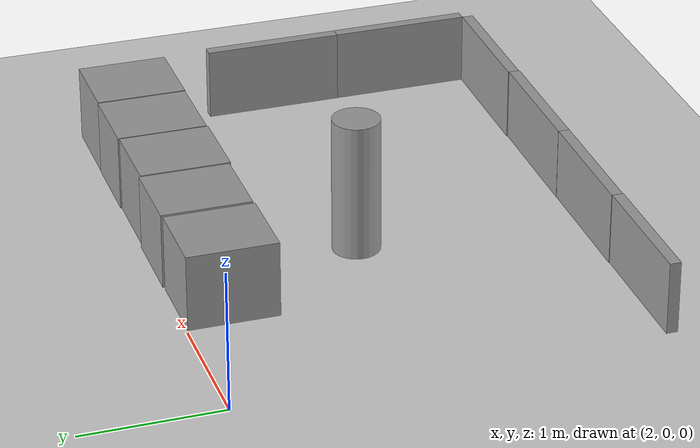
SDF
<sdf version="1.6">
 <world name="default">
  <model name="ground_plane">
   <static>1</static>
   <link name="link">
    <collision name="collision">
     <geometry><plane><normal>0 0 1</normal><size>100 100</size></plane></geometry>
     <surface>
      <contact><collide_bitmask>65535</collide_bitmask></contact>
      <friction><ode><mu>100</mu><mu2>50</mu2></ode></friction>
     </surface>
    </collision>
    <visual name="visual">
     <cast_shadows>0</cast_shadows>
     <geometry><plane><normal>0 0 1</normal><size>100 100</size></plane></geometry>
     <material>
      <script><uri>file://media/materials/scripts/gazebo.material</uri><name>Gazebo/Grey</name></script>
     </material>
    </visual>
   </link>
  </model>
  <model name="panel_9">
   <link name="link">
    <inertial>
     <mass>0.0428479</mass>
     <inertia>
      <ixx>0.00456249</ixx>
      <ixy>0</ixy>
      <ixz>0</ixz>
      <iyy>0.00101543</iyy>
      <iyz>0</iyz>
      <izz>0.00359426</izz>
     </inertia>
    </inertial>
    <pose>-0.996065 -0.479892 0.260289 0 -0 0</pose>
    <visual name="visual">
     <geometry><box><size>0.081299 1 0.527041</size></box></geometry>
     <material>
      <script><name>Gazebo/Grey</name><uri>file://media/materials/scripts/gazebo.material</uri></script>
      <emissive>0 0 0 1</emissive>
      <shader type="vertex"><normal_map>__default__</normal_map></shader>
      <ambient>0.3 0.3 0.3 1</ambient>
      <diffuse>0.7 0.7 0.7 1</diffuse>
      <specular>0.01 0.01 0.01 1</specular>
     </material>
    </visual>
    <collision name="collision">
     <geometry><box><size>0.081299 1 0.527041</size></box></geometry>
     <surface>
      <friction>
       <ode><mu>1</mu><mu2>1</mu2><fdir1>0 0 0</fdir1><slip1>0</slip1><slip2>0</slip2></ode>
       <torsional>
        <coefficient>1</coefficient>
        <patch_radius>0</patch_radius>
        <surface_radius>0</surface_radius>
        <use_patch_radius>1</use_patch_radius>
        <ode><slip>0</slip></ode>
       </torsional>
      </friction>
      <bounce><restitution_coefficient>0</restitution_coefficient><threshold>1e+06</threshold></bounce>
      <contact>
       <collide_without_contact>0</collide_without_contact>
       <collide_without_contact_bitmask>1</collide_without_contact_bitmask>
       <collide_bitmask>1</collide_bitmask>
       <ode>
        <soft_cfm>0</soft_cfm>
        <soft_erp>0.2</soft_erp>
        <kp>1e+13</kp>
        <kd>1</kd>
        <max_vel>0.01</max_vel>
        <min_depth>0</min_depth>
       </ode>
       <bullet>
        <split_impulse>1</split_impulse>
        <split_impulse_penetration_threshold>-0.01</split_impulse_penetration_threshold>
        <soft_cfm>0</soft_cfm>
        <soft_erp>0.2</soft_erp>
        <kp>1e+13</kp>
        <kd>1</kd>
       </bullet>
      </contact>
     </surface>
    </collision>
   </link>
   <static>0</static>
   <allow_auto_disable>0</allow_auto_disable>
   <pose>7.03497 -1.01885 0.00323 -1e-06 0 0.002619</pose>
  </model>
  <model name="panel_10">
   <link name="link">
    <inertial>
     <mass>0.0428479</mass>
     <inertia>
      <ixx>0.00456249</ixx>
      <ixy>0</ixy>
      <ixz>0</ixz>
      <iyy>0.00101543</iyy>
      <iyz>0</iyz>
      <izz>0.00359426</izz>
     </inertia>
    </inertial>
    <pose>-0.996065 -0.479892 0.260289 0 -0 0</pose>
    <visual name="visual">
     <geometry><box><size>0.081299 1 0.527041</size></box></geometry>
     <material>
      <script><name>Gazebo/Grey</name><uri>file://media/materials/scripts/gazebo.material</uri></script>
      <emissive>0 0 0 1</emissive>
      <shader type="vertex"><normal_map>__default__</normal_map></shader>
      <ambient>0.3 0.3 0.3 1</ambient>
      <diffuse>0.7 0.7 0.7 1</diffuse>
      <specular>0.01 0.01 0.01 1</specular>
     </material>
    </visual>
    <collision name="collision">
     <geometry><box><size>0.081299 1 0.527041</size></box></geometry>
     <surface>
      <friction>
       <ode><mu>1</mu><mu2>1</mu2><fdir1>0 0 0</fdir1><slip1>0</slip1><slip2>0</slip2></ode>
       <torsional>
        <coefficient>1</coefficient>
        <patch_radius>0</patch_radius>
        <surface_radius>0</surface_radius>
        <use_patch_radius>1</use_patch_radius>
        <ode><slip>0</slip></ode>
       </torsional>
      </friction>
      <bounce><restitution_coefficient>0</restitution_coefficient><threshold>1e+06</threshold></bounce>
      <contact>
       <collide_without_contact>0</collide_without_contact>
       <collide_without_contact_bitmask>1</collide_without_contact_bitmask>
       <collide_bitmask>1</collide_bitmask>
       <ode>
        <soft_cfm>0</soft_cfm>
        <soft_erp>0.2</soft_erp>
        <kp>1e+13</kp>
        <kd>1</kd>
        <max_vel>0.01</max_vel>
        <min_depth>0</min_depth>
       </ode>
       <bullet>
        <split_impulse>1</split_impulse>
        <split_impulse_penetration_threshold>-0.01</split_impulse_penetration_threshold>
        <soft_cfm>0</soft_cfm>
        <soft_erp>0.2</soft_erp>
        <kp>1e+13</kp>
        <kd>1</kd>
       </bullet>
      </contact>
     </surface>
    </collision>
   </link>
   <static>0</static>
   <allow_auto_disable>0</allow_auto_disable>
   <pose>7.03911 -2.01685 0.00323 -1e-06 -0 0.004812</pose>
  </model>
  <model name="panel_14_clone_1_clone">
   <link name="link">
    <inertial>
     <mass>0.0428479</mass>
     <inertia>
      <ixx>0.00456249</ixx>
      <ixy>0</ixy>
      <ixz>0</ixz>
      <iyy>0.00101543</iyy>
      <iyz>0</iyz>
      <izz>0.00359426</izz>
     </inertia>
    </inertial>
    <pose>-0.996065 -0.479892 0.260289 0 -0 0</pose>
    <visual name="visual">
     <geometry><box><size>0.081299 1 0.527041</size></box></geometry>
     <material>
      <script><name>Gazebo/Grey</name><uri>file://media/materials/scripts/gazebo.material</uri></script>
      <emissive>0 0 0 1</emissive>
      <shader type="vertex"><normal_map>__default__</normal_map></shader>
      <ambient>0.3 0.3 0.3 1</ambient>
      <diffuse>0.7 0.7 0.7 1</diffuse>
      <specular>0.01 0.01 0.01 1</specular>
     </material>
    </visual>
    <collision name="collision">
     <geometry><box><size>0.081299 1 0.527041</size></box></geometry>
     <surface>
      <friction>
       <ode><mu>1</mu><mu2>1</mu2><fdir1>0 0 0</fdir1><slip1>0</slip1><slip2>0</slip2></ode>
       <torsional>
        <coefficient>1</coefficient>
        <patch_radius>0</patch_radius>
        <surface_radius>0</surface_radius>
        <use_patch_radius>1</use_patch_radius>
        <ode><slip>0</slip></ode>
       </torsional>
      </friction>
      <bounce><restitution_coefficient>0</restitution_coefficient><threshold>1e+06</threshold></bounce>
      <contact>
       <collide_without_contact>0</collide_without_contact>
       <collide_without_contact_bitmask>1</collide_without_contact_bitmask>
       <collide_bitmask>1</collide_bitmask>
       <ode>
        <soft_cfm>0</soft_cfm>
        <soft_erp>0.2</soft_erp>
        <kp>1e+13</kp>
        <kd>1</kd>
        <max_vel>0.01</max_vel>
        <min_depth>0</min_depth>
       </ode>
       <bullet>
        <split_impulse>1</split_impulse>
        <split_impulse_penetration_threshold>-0.01</split_impulse_penetration_threshold>
        <soft_cfm>0</soft_cfm>
        <soft_erp>0.2</soft_erp>
        <kp>1e+13</kp>
        <kd>1</kd>
       </bullet>
      </contact>
     </surface>
    </collision>
   </link>
   <static>0</static>
   <allow_auto_disable>0</allow_auto_disable>
   <pose>5.98558 -4.03892 0.003223 -9e-06 0 -1.57313</pose>
  </model>
  <model name="panel_14_clone_1_clone_clone">
   <link name="link">
    <inertial>
     <mass>0.0428479</mass>
     <inertia>
      <ixx>0.00456249</ixx>
      <ixy>0</ixy>
      <ixz>0</ixz>
      <iyy>0.00101543</iyy>
      <iyz>0</iyz>
      <izz>0.00359426</izz>
     </inertia>
    </inertial>
    <pose>-0.996065 -0.479892 0.260289 0 -0 0</pose>
    <visual name="visual">
     <geometry><box><size>0.081299 1 0.527041</size></box></geometry>
     <material>
      <script><name>Gazebo/Grey</name><uri>file://media/materials/scripts/gazebo.material</uri></script>
      <emissive>0 0 0 1</emissive>
      <shader type="vertex"><normal_map>__default__</normal_map></shader>
      <ambient>0.3 0.3 0.3 1</ambient>
      <diffuse>0.7 0.7 0.7 1</diffuse>
      <specular>0.01 0.01 0.01 1</specular>
     </material>
    </visual>
    <collision name="collision">
     <geometry><box><size>0.081299 1 0.527041</size></box></geometry>
     <surface>
      <friction>
       <ode><mu>1</mu><mu2>1</mu2><fdir1>0 0 0</fdir1><slip1>0</slip1><slip2>0</slip2></ode>
       <torsional>
        <coefficient>1</coefficient>
        <patch_radius>0</patch_radius>
        <surface_radius>0</surface_radius>
        <use_patch_radius>1</use_patch_radius>
        <ode><slip>0</slip></ode>
       </torsional>
      </friction>
      <bounce><restitution_coefficient>0</restitution_coefficient><threshold>1e+06</threshold></bounce>
      <contact>
       <collide_without_contact>0</collide_without_contact>
       <collide_without_contact_bitmask>1</collide_without_contact_bitmask>
       <collide_bitmask>1</collide_bitmask>
       <ode>
        <soft_cfm>0</soft_cfm>
        <soft_erp>0.2</soft_erp>
        <kp>1e+13</kp>
        <kd>1</kd>
        <max_vel>0.01</max_vel>
        <min_depth>0</min_depth>
       </ode>
       <bullet>
        <split_impulse>1</split_impulse>
        <split_impulse_penetration_threshold>-0.01</split_impulse_penetration_threshold>
        <soft_cfm>0</soft_cfm>
        <soft_erp>0.2</soft_erp>
        <kp>1e+13</kp>
        <kd>1</kd>
       </bullet>
      </contact>
     </surface>
    </collision>
   </link>
   <static>0</static>
   <allow_auto_disable>0</allow_auto_disable>
   <pose>4.98482 -4.04279 0.003232 1e-06 -0 -1.57377</pose>
  </model>
  <model name="panel_14_clone_1_clone_clone_0">
   <link name="link">
    <inertial>
     <mass>0.0428479</mass>
     <inertia>
      <ixx>0.00456249</ixx>
      <ixy>0</ixy>
      <ixz>0</ixz>
      <iyy>0.00101543</iyy>
      <iyz>0</iyz>
      <izz>0.00359426</izz>
     </inertia>
    </inertial>
    <pose>-0.996065 -0.479892 0.260289 0 -0 0</pose>
    <visual name="visual">
     <geometry><box><size>0.081299 1 0.527041</size></box></geometry>
     <material>
      <script><name>Gazebo/Grey</name><uri>file://media/materials/scripts/gazebo.material</uri></script>
      <emissive>0 0 0 1</emissive>
      <shader type="vertex"><normal_map>__default__</normal_map></shader>
      <ambient>0.3 0.3 0.3 1</ambient>
      <diffuse>0.7 0.7 0.7 1</diffuse>
      <specular>0.01 0.01 0.01 1</specular>
     </material>
    </visual>
    <collision name="collision">
     <geometry><box><size>0.081299 1 0.527041</size></box></geometry>
     <surface>
      <friction>
       <ode><mu>1</mu><mu2>1</mu2><fdir1>0 0 0</fdir1><slip1>0</slip1><slip2>0</slip2></ode>
       <torsional>
        <coefficient>1</coefficient>
        <patch_radius>0</patch_radius>
        <surface_radius>0</surface_radius>
        <use_patch_radius>1</use_patch_radius>
        <ode><slip>0</slip></ode>
       </torsional>
      </friction>
      <bounce><restitution_coefficient>0</restitution_coefficient><threshold>1e+06</threshold></bounce>
      <contact>
       <collide_without_contact>0</collide_without_contact>
       <collide_without_contact_bitmask>1</collide_without_contact_bitmask>
       <collide_bitmask>1</collide_bitmask>
       <ode>
        <soft_cfm>0</soft_cfm>
        <soft_erp>0.2</soft_erp>
        <kp>1e+13</kp>
        <kd>1</kd>
        <max_vel>0.01</max_vel>
        <min_depth>0</min_depth>
       </ode>
       <bullet>
        <split_impulse>1</split_impulse>
        <split_impulse_penetration_threshold>-0.01</split_impulse_penetration_threshold>
        <soft_cfm>0</soft_cfm>
        <soft_erp>0.2</soft_erp>
        <kp>1e+13</kp>
        <kd>1</kd>
       </bullet>
      </contact>
     </surface>
    </collision>
   </link>
   <static>0</static>
   <allow_auto_disable>0</allow_auto_disable>
   <pose>3.98458 -4.04089 0.003225 -6e-06 -0 -1.574</pose>
  </model>
  <model name="panel_14_clone_1_clone_clone_1">
   <link name="link">
    <inertial>
     <mass>0.0428479</mass>
     <inertia>
      <ixx>0.00456249</ixx>
      <ixy>0</ixy>
      <ixz>0</ixz>
      <iyy>0.00101543</iyy>
      <iyz>0</iyz>
      <izz>0.00359426</izz>
     </inertia>
    </inertial>
    <pose>-0.996065 -0.479892 0.260289 0 -0 0</pose>
    <visual name="visual">
     <geometry><box><size>0.081299 1 0.527041</size></box></geometry>
     <material>
      <script><name>Gazebo/Grey</name><uri>file://media/materials/scripts/gazebo.material</uri></script>
      <emissive>0 0 0 1</emissive>
      <shader type="vertex"><normal_map>__default__</normal_map></shader>
      <ambient>0.3 0.3 0.3 1</ambient>
      <diffuse>0.7 0.7 0.7 1</diffuse>
      <specular>0.01 0.01 0.01 1</specular>
     </material>
    </visual>
    <collision name="collision">
     <geometry><box><size>0.081299 1 0.527041</size></box></geometry>
     <surface>
      <friction>
       <ode><mu>1</mu><mu2>1</mu2><fdir1>0 0 0</fdir1><slip1>0</slip1><slip2>0</slip2></ode>
       <torsional>
        <coefficient>1</coefficient>
        <patch_radius>0</patch_radius>
        <surface_radius>0</surface_radius>
        <use_patch_radius>1</use_patch_radius>
        <ode><slip>0</slip></ode>
       </torsional>
      </friction>
      <bounce><restitution_coefficient>0</restitution_coefficient><threshold>1e+06</threshold></bounce>
      <contact>
       <collide_without_contact>0</collide_without_contact>
       <collide_without_contact_bitmask>1</collide_without_contact_bitmask>
       <collide_bitmask>1</collide_bitmask>
       <ode>
        <soft_cfm>0</soft_cfm>
        <soft_erp>0.2</soft_erp>
        <kp>1e+13</kp>
        <kd>1</kd>
        <max_vel>0.01</max_vel>
        <min_depth>0</min_depth>
       </ode>
       <bullet>
        <split_impulse>1</split_impulse>
        <split_impulse_penetration_threshold>-0.01</split_impulse_penetration_threshold>
        <soft_cfm>0</soft_cfm>
        <soft_erp>0.2</soft_erp>
        <kp>1e+13</kp>
        <kd>1</kd>
       </bullet>
      </contact>
     </surface>
    </collision>
   </link>
   <static>0</static>
   <allow_auto_disable>0</allow_auto_disable>
   <pose>2.98661 -4.04181 0.003231 4e-06 -0 -1.57165</pose>
  </model>
  <model name="unit_cylinder_smaller">
   <link name="link">
    <inertial>
     <mass>0.116698</mass>
     <inertia>
      <ixx>0.010576</ixx>
      <ixy>0</ixy>
      <ixz>0</ixz>
      <iyy>0.010576</iyy>
      <iyz>0</iyz>
      <izz>0.00170223</izz>
     </inertia>
    </inertial>
    <visual name="visual">
     <geometry><cylinder><radius>0.170802</radius><length>1</length></cylinder></geometry>
     <material>
      <script><name>Gazebo/Grey</name><uri>file://media/materials/scripts/gazebo.material</uri></script>
     </material>
    </visual>
    <collision name="collision">
     <geometry><cylinder><radius>0.170802</radius><length>1</length></cylinder></geometry>
     <surface>
      <friction>
       <ode><mu>1</mu><mu2>1</mu2><fdir1>0 0 0</fdir1><slip1>0</slip1><slip2>0</slip2></ode>
       <torsional>
        <coefficient>1</coefficient>
        <patch_radius>0</patch_radius>
        <surface_radius>0</surface_radius>
        <use_patch_radius>1</use_patch_radius>
        <ode><slip>0</slip></ode>
       </torsional>
      </friction>
      <bounce><restitution_coefficient>0</restitution_coefficient><threshold>1e+06</threshold></bounce>
      <contact>
       <collide_without_contact>0</collide_without_contact>
       <collide_without_contact_bitmask>1</collide_without_contact_bitmask>
       <collide_bitmask>1</collide_bitmask>
       <ode>
        <soft_cfm>0</soft_cfm>
        <soft_erp>0.2</soft_erp>
        <kp>1e+13</kp>
        <kd>1</kd>
        <max_vel>0.01</max_vel>
        <min_depth>0</min_depth>
       </ode>
       <bullet>
        <split_impulse>1</split_impulse>
        <split_impulse_penetration_threshold>-0.01</split_impulse_penetration_threshold>
        <soft_cfm>0</soft_cfm>
        <soft_erp>0.2</soft_erp>
        <kp>1e+13</kp>
        <kd>1</kd>
       </bullet>
      </contact>
     </surface>
    </collision>
   </link>
   <static>0</static>
   <pose>3.75497 -1.4197 0.5 0 -0 0</pose>
  </model>
  <model name="box_level5">
   <link name="link">
    <inertial>
     <mass>0.207385</mass>
     <inertia>
      <ixx>0.0125184</ixx>
      <ixy>0</ixy>
      <ixz>0</ixz>
      <iyy>0.0111102</iyy>
      <iyz>0</iyz>
      <izz>0.0130087</izz>
     </inertia>
    </inertial>
    <visual name="visual">
     <geometry><box><size>0.579331 0.645836 0.554302</size></box></geometry>
     <material>
      <script><name>Gazebo/Grey</name><uri>file://media/materials/scripts/gazebo.material</uri></script>
     </material>
    </visual>
    <collision name="collision">
     <geometry><box><size>0.579331 0.645836 0.554302</size></box></geometry>
     <surface>
      <friction>
       <ode><mu>1</mu><mu2>1</mu2><fdir1>0 0 0</fdir1><slip1>0</slip1><slip2>0</slip2></ode>
       <torsional>
        <coefficient>1</coefficient>
        <patch_radius>0</patch_radius>
        <surface_radius>0</surface_radius>
        <use_patch_radius>1</use_patch_radius>
        <ode><slip>0</slip></ode>
       </torsional>
      </friction>
      <bounce><restitution_coefficient>0</restitution_coefficient><threshold>1e+06</threshold></bounce>
      <contact>
       <collide_without_contact>0</collide_without_contact>
       <collide_without_contact_bitmask>1</collide_without_contact_bitmask>
       <collide_bitmask>1</collide_bitmask>
       <ode>
        <soft_cfm>0</soft_cfm>
        <soft_erp>0.2</soft_erp>
        <kp>1e+13</kp>
        <kd>1</kd>
        <max_vel>0.01</max_vel>
        <min_depth>0</min_depth>
       </ode>
       <bullet>
        <split_impulse>1</split_impulse>
        <split_impulse_penetration_threshold>-0.01</split_impulse_penetration_threshold>
        <soft_cfm>0</soft_cfm>
        <soft_erp>0.2</soft_erp>
        <kp>1e+13</kp>
        <kd>1</kd>
       </bullet>
      </contact>
     </surface>
    </collision>
   </link>
   <static>0</static>
   <pose>5.69406 -0.332897 0.277144 -6e-06 4e-06 0</pose>
  </model>
  <model name="box_level5_clone">
   <link name="link">
    <inertial>
     <mass>0.207385</mass>
     <inertia>
      <ixx>0.0125184</ixx>
      <ixy>0</ixy>
      <ixz>0</ixz>
      <iyy>0.0111102</iyy>
      <iyz>0</iyz>
      <izz>0.0130087</izz>
     </inertia>
    </inertial>
    <visual name="visual">
     <geometry><box><size>0.579331 0.645836 0.554302</size></box></geometry>
     <material>
      <script><name>Gazebo/Grey</name><uri>file://media/materials/scripts/gazebo.material</uri></script>
     </material>
    </visual>
    <collision name="collision">
     <geometry><box><size>0.579331 0.645836 0.554302</size></box></geometry>
     <surface>
      <friction>
       <ode><mu>1</mu><mu2>1</mu2><fdir1>0 0 0</fdir1><slip1>0</slip1><slip2>0</slip2></ode>
       <torsional>
        <coefficient>1</coefficient>
        <patch_radius>0</patch_radius>
        <surface_radius>0</surface_radius>
        <use_patch_radius>1</use_patch_radius>
        <ode><slip>0</slip></ode>
       </torsional>
      </friction>
      <bounce><restitution_coefficient>0</restitution_coefficient><threshold>1e+06</threshold></bounce>
      <contact>
       <collide_without_contact>0</collide_without_contact>
       <collide_without_contact_bitmask>1</collide_without_contact_bitmask>
       <collide_bitmask>1</collide_bitmask>
       <ode>
        <soft_cfm>0</soft_cfm>
        <soft_erp>0.2</soft_erp>
        <kp>1e+13</kp>
        <kd>1</kd>
        <max_vel>0.01</max_vel>
        <min_depth>0</min_depth>
       </ode>
       <bullet>
        <split_impulse>1</split_impulse>
        <split_impulse_penetration_threshold>-0.01</split_impulse_penetration_threshold>
        <soft_cfm>0</soft_cfm>
        <soft_erp>0.2</soft_erp>
        <kp>1e+13</kp>
        <kd>1</kd>
       </bullet>
      </contact>
     </surface>
    </collision>
   </link>
   <static>0</static>
   <pose>5.10303 -0.329393 0.277144 -6e-06 4e-06 0</pose>
  </model>
  <model name="box_level5_clone_0">
   <link name="link">
    <inertial>
     <mass>0.207385</mass>
     <inertia>
      <ixx>0.0125184</ixx>
      <ixy>0</ixy>
      <ixz>0</ixz>
      <iyy>0.0111102</iyy>
      <iyz>0</iyz>
      <izz>0.0130087</izz>
     </inertia>
    </inertial>
    <visual name="visual">
     <geometry><box><size>0.579331 0.645836 0.554302</size></box></geometry>
     <material>
      <script><name>Gazebo/Grey</name><uri>file://media/materials/scripts/gazebo.material</uri></script>
     </material>
    </visual>
    <collision name="collision">
     <geometry><box><size>0.579331 0.645836 0.554302</size></box></geometry>
     <surface>
      <friction>
       <ode><mu>1</mu><mu2>1</mu2><fdir1>0 0 0</fdir1><slip1>0</slip1><slip2>0</slip2></ode>
       <torsional>
        <coefficient>1</coefficient>
        <patch_radius>0</patch_radius>
        <surface_radius>0</surface_radius>
        <use_patch_radius>1</use_patch_radius>
        <ode><slip>0</slip></ode>
       </torsional>
      </friction>
      <bounce><restitution_coefficient>0</restitution_coefficient><threshold>1e+06</threshold></bounce>
      <contact>
       <collide_without_contact>0</collide_without_contact>
       <collide_without_contact_bitmask>1</collide_without_contact_bitmask>
       <collide_bitmask>1</collide_bitmask>
       <ode>
        <soft_cfm>0</soft_cfm>
        <soft_erp>0.2</soft_erp>
        <kp>1e+13</kp>
        <kd>1</kd>
        <max_vel>0.01</max_vel>
        <min_depth>0</min_depth>
       </ode>
       <bullet>
        <split_impulse>1</split_impulse>
        <split_impulse_penetration_threshold>-0.01</split_impulse_penetration_threshold>
        <soft_cfm>0</soft_cfm>
        <soft_erp>0.2</soft_erp>
        <kp>1e+13</kp>
        <kd>1</kd>
       </bullet>
      </contact>
     </surface>
    </collision>
   </link>
   <static>0</static>
   <pose>4.51548 -0.338123 0.277144 -6e-06 4e-06 0</pose>
  </model>
  <model name="box_level5_clone_1">
   <link name="link">
    <inertial>
     <mass>0.207385</mass>
     <inertia>
      <ixx>0.0125184</ixx>
      <ixy>0</ixy>
      <ixz>0</ixz>
      <iyy>0.0111102</iyy>
      <iyz>0</iyz>
      <izz>0.0130087</izz>
     </inertia>
    </inertial>
    <visual name="visual">
     <geometry><box><size>0.579331 0.645836 0.554302</size></box></geometry>
     <material>
      <script><name>Gazebo/Grey</name><uri>file://media/materials/scripts/gazebo.material</uri></script>
     </material>
    </visual>
    <collision name="collision">
     <geometry><box><size>0.579331 0.645836 0.554302</size></box></geometry>
     <surface>
      <friction>
       <ode><mu>1</mu><mu2>1</mu2><fdir1>0 0 0</fdir1><slip1>0</slip1><slip2>0</slip2></ode>
       <torsional>
        <coefficient>1</coefficient>
        <patch_radius>0</patch_radius>
        <surface_radius>0</surface_radius>
        <use_patch_radius>1</use_patch_radius>
        <ode><slip>0</slip></ode>
       </torsional>
      </friction>
      <bounce><restitution_coefficient>0</restitution_coefficient><threshold>1e+06</threshold></bounce>
      <contact>
       <collide_without_contact>0</collide_without_contact>
       <collide_without_contact_bitmask>1</collide_without_contact_bitmask>
       <collide_bitmask>1</collide_bitmask>
       <ode>
        <soft_cfm>0</soft_cfm>
        <soft_erp>0.2</soft_erp>
        <kp>1e+13</kp>
        <kd>1</kd>
        <max_vel>0.01</max_vel>
        <min_depth>0</min_depth>
       </ode>
       <bullet>
        <split_impulse>1</split_impulse>
        <split_impulse_penetration_threshold>-0.01</split_impulse_penetration_threshold>
        <soft_cfm>0</soft_cfm>
        <soft_erp>0.2</soft_erp>
        <kp>1e+13</kp>
        <kd>1</kd>
       </bullet>
      </contact>
     </surface>
    </collision>
   </link>
   <static>0</static>
   <pose>3.92306 -0.324402 0.277144 -6e-06 4e-06 0</pose>
  </model>
  <model name="box_level5_clone_2">
   <link name="link">
    <inertial>
     <mass>0.207385</mass>
     <inertia>
      <ixx>0.0125184</ixx>
      <ixy>0</ixy>
      <ixz>0</ixz>
      <iyy>0.0111102</iyy>
      <iyz>0</iyz>
      <izz>0.0130087</izz>
     </inertia>
    </inertial>
    <visual name="visual">
     <geometry><box><size>0.579331 0.645836 0.554302</size></box></geometry>
     <material>
      <script><name>Gazebo/Grey</name><uri>file://media/materials/scripts/gazebo.material</uri></script>
     </material>
    </visual>
    <collision name="collision">
     <geometry><box><size>0.579331 0.645836 0.554302</size></box></geometry>
     <surface>
      <friction>
       <ode><mu>1</mu><mu2>1</mu2><fdir1>0 0 0</fdir1><slip1>0</slip1><slip2>0</slip2></ode>
       <torsional>
        <coefficient>1</coefficient>
        <patch_radius>0</patch_radius>
        <surface_radius>0</surface_radius>
        <use_patch_radius>1</use_patch_radius>
        <ode><slip>0</slip></ode>
       </torsional>
      </friction>
      <bounce><restitution_coefficient>0</restitution_coefficient><threshold>1e+06</threshold></bounce>
      <contact>
       <collide_without_contact>0</collide_without_contact>
       <collide_without_contact_bitmask>1</collide_without_contact_bitmask>
       <collide_bitmask>1</collide_bitmask>
       <ode>
        <soft_cfm>0</soft_cfm>
        <soft_erp>0.2</soft_erp>
        <kp>1e+13</kp>
        <kd>1</kd>
        <max_vel>0.01</max_vel>
        <min_depth>0</min_depth>
       </ode>
       <bullet>
        <split_impulse>1</split_impulse>
        <split_impulse_penetration_threshold>-0.01</split_impulse_penetration_threshold>
        <soft_cfm>0</soft_cfm>
        <soft_erp>0.2</soft_erp>
        <kp>1e+13</kp>
        <kd>1</kd>
       </bullet>
      </contact>
     </surface>
    </collision>
   </link>
   <static>0</static>
   <pose>3.31843 -0.331911 0.277144 -6e-06 4e-06 0</pose>
  </model>
 </world>
</sdf>
